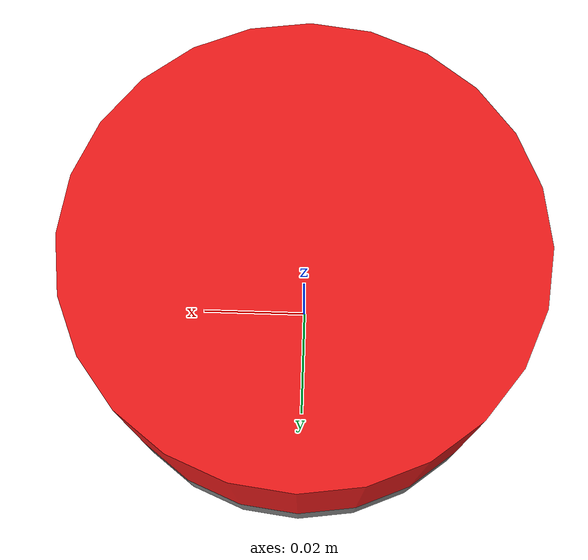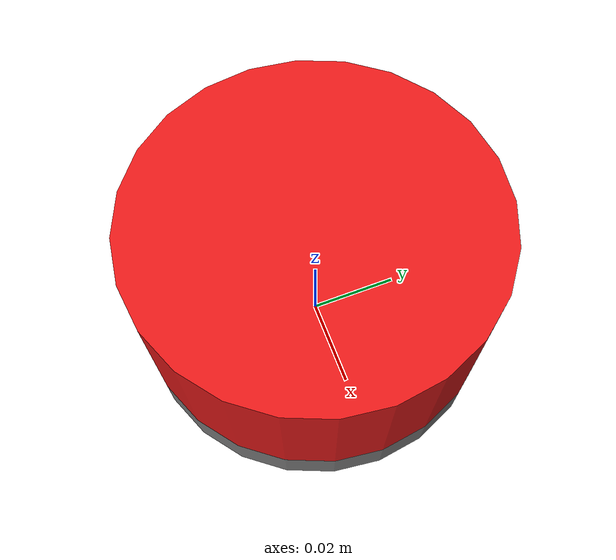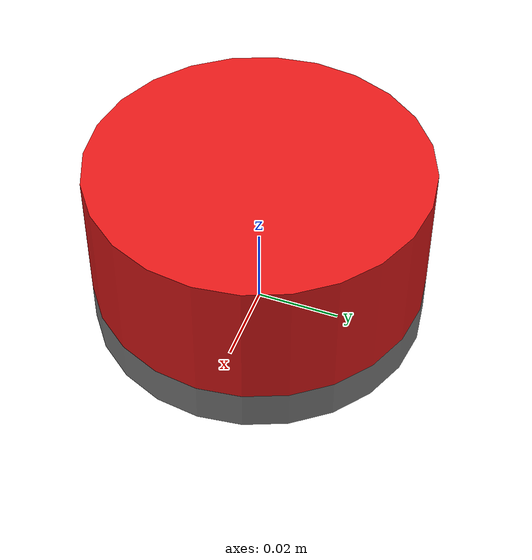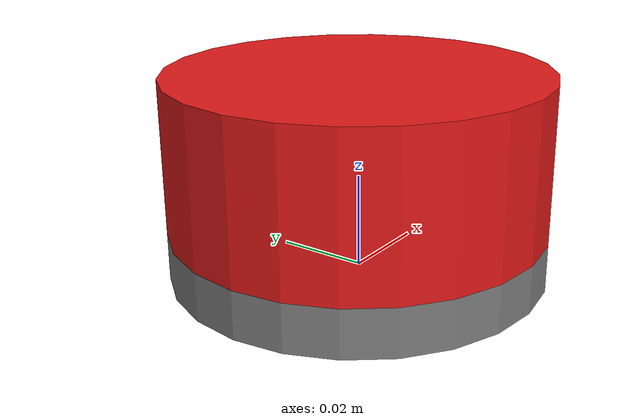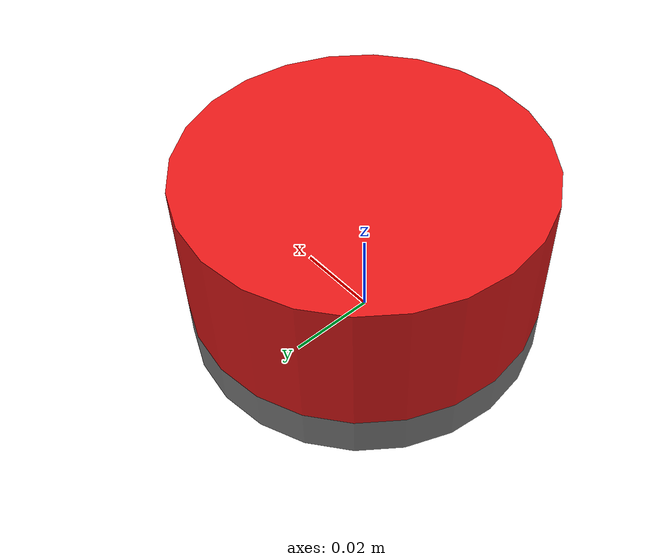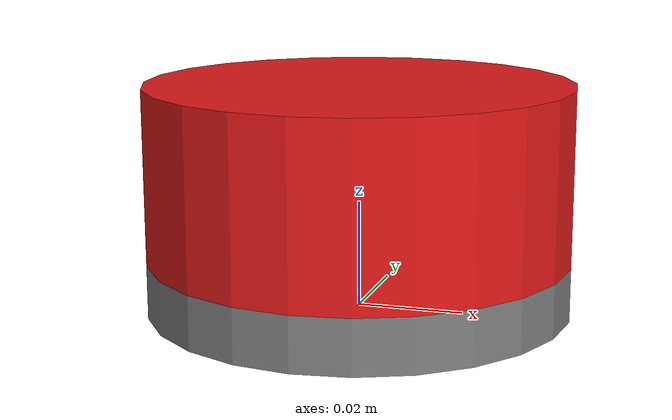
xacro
<?xml version="1.0" ?>
<!--  Creative Commons Attribution 4.0 International Public License (CC BY 4.0) -->

<robot xmlns:xacro="http://www.ros.org/wiki/xacro" name="WEF-6A200">
  <xacro:arg name="sensor_frame_id" default="sensor"/>
  <xacro:include filename="$(find dynpick_driver)/urdf/dynpick_WEF-6A200_macro.xacro"/>

  <link name="world"/>

  <xacro:dynpick prefix="" parent="world" sensor_frame_id="$(arg sensor_frame_id)">
    <origin xyz="0 0 0" rpy="0 0 0" />
  </xacro:dynpick>
</robot>

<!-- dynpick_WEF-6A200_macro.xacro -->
<!--  Creative Commons Attribution 4.0 International Public License (CC BY 4.0) -->
<robot xmlns:xacro="http://www.ros.org/wiki/xacro" name="dynpick_WEF_6A200" >

  <xacro:macro name="dynpick" params="parent prefix sensor_frame_id *origin">

    <joint name="${prefix}mount" type="fixed" >
      <insert_block name="origin" />
      <parent link="${parent}" />
      <child link="${prefix}fts_upper" />
    </joint>

    <link name="${prefix}fts_upper">
     <visual>
       <origin xyz="0 0 0.005" rpy="0 0 0"/>
       <geometry>
          <cylinder radius="0.04" length="0.01"/>
       </geometry>
       <material name="Gray">
        <color rgba="0.5 0.5 0.5 1"/>
       </material>
     </visual>
    </link>

    <joint name="${prefix}fts" type="fixed" >
     <origin xyz="0 0 0.01" rpy="0 0 0" />
     <parent link="${prefix}fts_upper" />
     <child link="${prefix}fts_body" />
    </joint>

    <!--link name="${prefix}fts_body"/-->
    <link name="${prefix}fts_body">
      <visual>
        <origin xyz="0 0 ${0.0325/2}" rpy="0 0 0"/>
        <geometry>
          <cylinder radius="0.04" length="0.0325"/>
        </geometry>
        <material name="Red">
          <color rgba="0.9 0.1 0.1 1"/>
        </material>
      </visual>
    </link>

    <joint name="${prefix}fts_measurement" type="fixed" >
      <origin xyz="0 0 ${0.0325/2}" rpy="0 0 0" />
      <parent link="${prefix}fts_body" />
      <child link="${prefix}${sensor_frame_id}" />
    </joint>

     <!--link where the measurement comes from-->
    <link name="${prefix}${sensor_frame_id}"/>

    <joint name="${prefix}lower" type="fixed" >
     <origin xyz="0 0 0.0325" rpy="0 0 0" />
     <parent link="${prefix}fts_body" />
     <child link="${prefix}fts_tool_mount" />
    </joint>

    <link name="${prefix}fts_tool_mount"/>

  </xacro:macro>

</robot>
